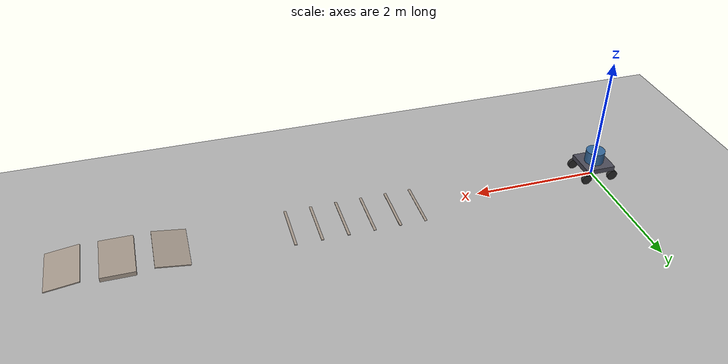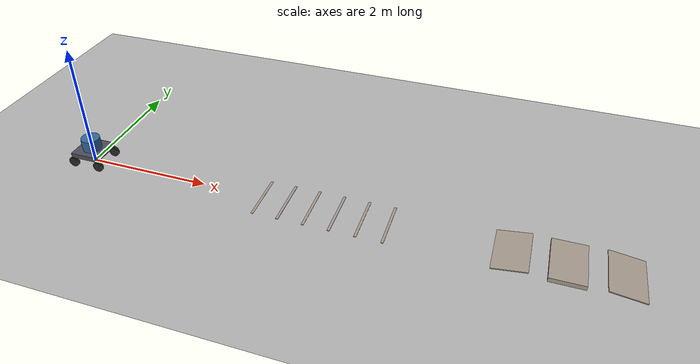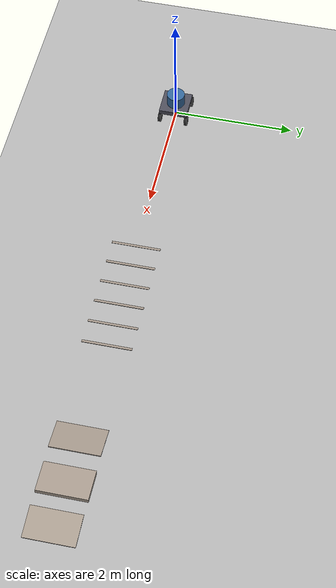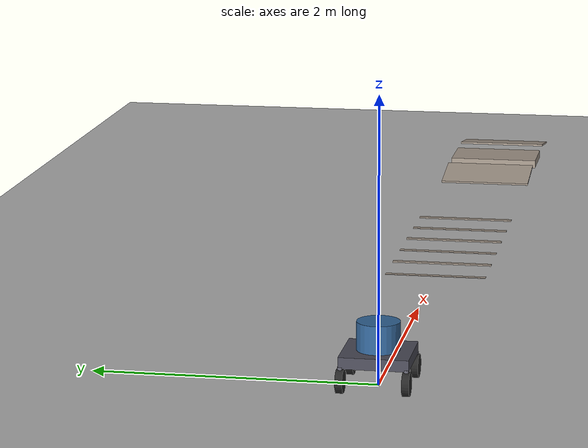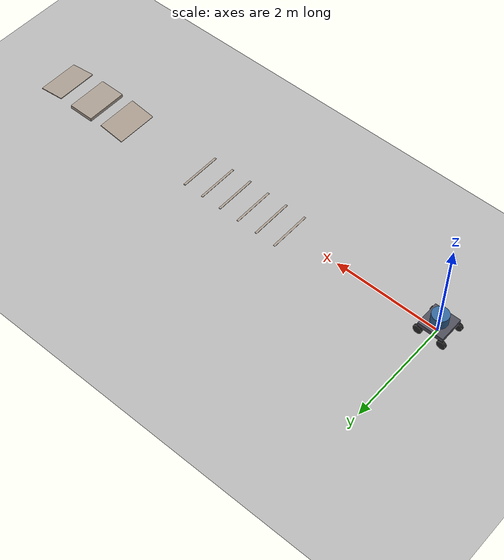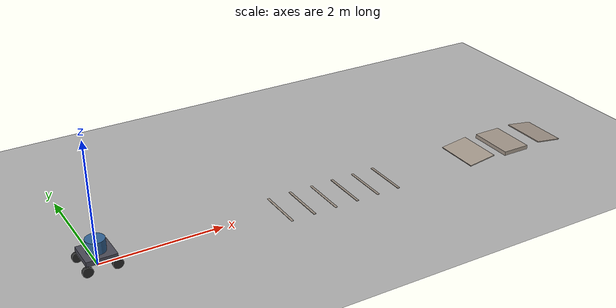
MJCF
<mujoco model="ballbutler_rover">
  <!-- Phase 2: Swerve drive rover with spring-damper suspension -->

  <!-- implicitfast integrator is more stable for spring-damper systems -->
  <option timestep="0.002" gravity="0 0 -9.81" integrator="implicitfast">
    <flag contact="enable" />
  </option>

  <default>
    <geom condim="4" friction="0.9 0.005 0.001" solref="0.02 1" solimp="0.9 0.95 0.001" />
    <joint damping="0.1" />
  </default>

  <visual>
    <headlight ambient="0.3 0.3 0.3" diffuse="0.6 0.6 0.6" />
    <quality shadowsize="4096" />
    <map znear="0.01" zfar="50" />
  </visual>

  <asset>
    <texture name="grid" type="2d" builtin="checker" rgb1="0.8 0.8 0.8" rgb2="0.6 0.6 0.6"
             width="512" height="512" />
    <material name="ground_mat" texture="grid" texrepeat="8 8" reflectance="0.1" />
    <material name="terrain_mat" rgba="0.65 0.6 0.55 1" />
  </asset>

  <!-- Rover: chassis, swerve modules, actuators, sensors, contacts -->
  <include file="rover.xml" />

  <worldbody>
    <!-- Overhead light -->
    <light pos="0 0 6" dir="0 0 -1" diffuse="0.8 0.8 0.8" specular="0.3 0.3 0.3" castshadow="true" />

    <!-- Tracking camera -->
    <camera name="track" pos="0 -4 3" xyaxes="1 0 0 0 0.6 0.8" mode="trackcom" />
    <!-- Fixed overhead camera -->
    <camera name="overhead" pos="0 0 8" zaxis="0 0 1" mode="fixed" />

    <!-- Ground plane: 20x20 m concrete-like surface -->
    <geom name="ground" type="plane" size="10 10 0.1" material="ground_mat"
          friction="0.9 0.005 0.001" condim="4" />

    <!-- TEST TERRAIN (Phase 2 validation)                                -->
    <!-- Bumps: 5-10 mm tall boxes at x=3..5 m along the x-axis          -->
    <!-- Curb-cut ramp: ~70 mm rise at x=7 m                             -->

    <!-- Small bumps — varying height, 40 mm wide along x, 800 mm across y -->
    <geom name="bump1" type="box" pos="3.0 0 0.0025" size="0.02 0.4 0.0025"
          material="terrain_mat" friction="0.9 0.005 0.001" condim="4" />
    <geom name="bump2" type="box" pos="3.4 0 0.005" size="0.02 0.4 0.005"
          material="terrain_mat" friction="0.9 0.005 0.001" condim="4" />
    <geom name="bump3" type="box" pos="3.8 0 0.0035" size="0.02 0.4 0.0035"
          material="terrain_mat" friction="0.9 0.005 0.001" condim="4" />
    <geom name="bump4" type="box" pos="4.2 0 0.005" size="0.02 0.4 0.005"
          material="terrain_mat" friction="0.9 0.005 0.001" condim="4" />
    <geom name="bump5" type="box" pos="4.6 0 0.004" size="0.02 0.4 0.004"
          material="terrain_mat" friction="0.9 0.005 0.001" condim="4" />
    <geom name="bump6" type="box" pos="5.0 0 0.005" size="0.02 0.4 0.005"
          material="terrain_mat" friction="0.9 0.005 0.001" condim="4" />

    <!-- Curb-cut ramp: 70 mm rise over 500 mm run (~8 degrees) -->
    <!-- Ramp up: tilted slab, bottom edge at ground, top edge at z=0.07 -->
    <geom name="ramp_up" type="box" pos="6.75 0 0.035" size="0.253 0.4 0.008"
          euler="0 -8 0" material="terrain_mat" friction="0.9 0.005 0.001" condim="4" />
    <!-- Flat top: solid block 500 mm long at 70 mm height -->
    <geom name="ramp_top" type="box" pos="7.5 0 0.035" size="0.25 0.4 0.035"
          material="terrain_mat" friction="0.9 0.005 0.001" condim="4" />
    <!-- Ramp down: mirror of ramp up -->
    <geom name="ramp_down" type="box" pos="8.25 0 0.035" size="0.253 0.4 0.008"
          euler="0 8 0" material="terrain_mat" friction="0.9 0.005 0.001" condim="4" />
  </worldbody>
</mujoco>

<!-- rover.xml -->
<mujoco>
  <!-- BallButler Rover — shared chassis, swerve modules, actuators,      -->
  <!-- sensors, and contact exclusions.                                   -->
  <!-- Included by scene.xml and scene_terrain.xml.  Any changes here     -->
  <!-- apply to ALL scenes automatically.                                 -->
  <!-- Coordinate frame: x-forward, y-left, z-up                         -->
  <!-- Chassis centre at z=0.21 m (clearance above wheel tops)           -->
  <!-- Chassis box: 480x480x80 mm                                        -->
  <!-- Wheel centres at z=0.0825 m (wheel radius)                       -->
  <!-- Track and wheelbase: 450 mm (+-225 mm from centre)                -->
  <!-- Module kinematic chain (from chassis outward):                     -->
  <!--   yaw hinge (chassis-mounted motor) ->                            -->
  <!--   prismatic slide (spline shaft suspension) ->                    -->
  <!--   fork body ->                                                     -->
  <!--   drive hinge (hub motor) ->                                      -->
  <!--   wheel                                                            -->
  <!-- Suspension parameters:                                             -->
  <!--   Sprung mass per corner: ~4.8 kg                                 -->
  <!--   Stiffness: 3600 N/m  (natural freq ~4.4 Hz)                    -->
  <!--   Damping: 100 N-s/m   (damping ratio ~0.39)                     -->
  <!--   Travel: +-25 mm (50 mm total)                                   -->
  <!--   springref: -0.013 m  (preload for ~zero static sag at q=0)     -->

  <asset>
    <material name="chassis_mat" rgba="0.3 0.3 0.35 1" />
    <material name="payload_mat" rgba="0.2 0.4 0.6 1" />
    <material name="yaw_motor_mat" rgba="0.4 0.4 0.45 1" />
    <material name="fork_mat" rgba="0.5 0.5 0.5 1" />
    <material name="wheel_mat" rgba="0.15 0.15 0.15 1" />
  </asset>

  <!-- CONTACT EXCLUSIONS                                                  -->
  <!-- Parent-child exclusions are automatic in MuJoCo.  We only need     -->
  <!-- explicit exclusions for non-adjacent bodies in the kinematic chain: -->
  <!--   chassis -> yaw_body -> fork -> wheel                              -->
  <!-- Automatic: chassis<->yaw_body, yaw_body<->fork, fork<->wheel       -->
  <!-- Manual:    chassis<->fork, chassis<->wheel, yaw_body<->wheel        -->
  <contact>
    <!-- FL module -->
    <exclude body1="chassis" body2="fl_fork" />
    <exclude body1="chassis" body2="fl_wheel" />
    <exclude body1="fl_yaw_body" body2="fl_wheel" />
    <!-- FR module -->
    <exclude body1="chassis" body2="fr_fork" />
    <exclude body1="chassis" body2="fr_wheel" />
    <exclude body1="fr_yaw_body" body2="fr_wheel" />
    <!-- RL module -->
    <exclude body1="chassis" body2="rl_fork" />
    <exclude body1="chassis" body2="rl_wheel" />
    <exclude body1="rl_yaw_body" body2="rl_wheel" />
    <!-- RR module -->
    <exclude body1="chassis" body2="rr_fork" />
    <exclude body1="chassis" body2="rr_wheel" />
    <exclude body1="rr_yaw_body" body2="rr_wheel" />
  </contact>

  <worldbody>
    <!-- ROVER CHASSIS                                                     -->
    <body name="chassis" pos="0 0 0.21">
      <freejoint name="chassis_free" />

      <!-- Chassis box: 480x480x80 mm, 10 kg -->
      <geom name="chassis_geom" type="box" size="0.24 0.24 0.04" mass="10"
            material="chassis_mat" />

      <!-- Lumped payload (Ball Butler + hopper + sensors + battery + compute) -->
      <!-- Cylinder: 300 mm diameter, 200 mm tall, centred 140 mm above chassis centre -->
      <geom name="payload" type="cylinder" pos="0 0 0.14" size="0.15 0.10" mass="8"
            material="payload_mat" contype="0" conaffinity="0" />

      <!-- IMU sensor site at chassis centre -->
      <site name="imu_site" pos="0 0 0" size="0.01" />

      <!-- ── FRONT-LEFT MODULE  (x=+0.225, y=+0.225) ─────────────── -->
      <body name="fl_yaw_body" pos="0.225 0.225 -0.04">
        <joint name="fl_yaw" type="hinge" axis="0 0 1" damping="2.0" />
        <geom name="fl_yaw_geom" type="cylinder" size="0.02 0.012"
              mass="0.3" material="yaw_motor_mat" contype="0" conaffinity="0" />
        <body name="fl_fork" pos="0 0 0">
          <joint name="fl_susp" type="slide" axis="0 0 1" limited="true"
                 range="-0.025 0.025" stiffness="3600" damping="100"
                 springref="-0.013" />
          <geom name="fl_fork_geom" type="box" size="0.015 0.015 0.044"
                pos="0 0 -0.044" mass="0.2" material="fork_mat" />
          <body name="fl_wheel" pos="0 0 -0.0875">
            <joint name="fl_drive" type="hinge" axis="0 1 0" damping="0.05" />
            <geom name="fl_wheel_geom" type="cylinder" size="0.0825 0.025"
                  euler="90 0 0" mass="2.5" material="wheel_mat"
                  friction="1.0 0.005 0.001" condim="4" />
          </body>
        </body>
      </body>

      <!-- ── FRONT-RIGHT MODULE (x=+0.225, y=-0.225) ─────────────── -->
      <body name="fr_yaw_body" pos="0.225 -0.225 -0.04">
        <joint name="fr_yaw" type="hinge" axis="0 0 1" damping="2.0" />
        <geom name="fr_yaw_geom" type="cylinder" size="0.02 0.012"
              mass="0.3" material="yaw_motor_mat" contype="0" conaffinity="0" />
        <body name="fr_fork" pos="0 0 0">
          <joint name="fr_susp" type="slide" axis="0 0 1" limited="true"
                 range="-0.025 0.025" stiffness="3600" damping="100"
                 springref="-0.013" />
          <geom name="fr_fork_geom" type="box" size="0.015 0.015 0.044"
                pos="0 0 -0.044" mass="0.2" material="fork_mat" />
          <body name="fr_wheel" pos="0 0 -0.0875">
            <joint name="fr_drive" type="hinge" axis="0 1 0" damping="0.05" />
            <geom name="fr_wheel_geom" type="cylinder" size="0.0825 0.025"
                  euler="90 0 0" mass="2.5" material="wheel_mat"
                  friction="1.0 0.005 0.001" condim="4" />
          </body>
        </body>
      </body>

      <!-- ── REAR-LEFT MODULE   (x=-0.225, y=+0.225) ─────────────── -->
      <body name="rl_yaw_body" pos="-0.225 0.225 -0.04">
        <joint name="rl_yaw" type="hinge" axis="0 0 1" damping="2.0" />
        <geom name="rl_yaw_geom" type="cylinder" size="0.02 0.012"
              mass="0.3" material="yaw_motor_mat" contype="0" conaffinity="0" />
        <body name="rl_fork" pos="0 0 0">
          <joint name="rl_susp" type="slide" axis="0 0 1" limited="true"
                 range="-0.025 0.025" stiffness="3600" damping="100"
                 springref="-0.013" />
          <geom name="rl_fork_geom" type="box" size="0.015 0.015 0.044"
                pos="0 0 -0.044" mass="0.2" material="fork_mat" />
          <body name="rl_wheel" pos="0 0 -0.0875">
            <joint name="rl_drive" type="hinge" axis="0 1 0" damping="0.05" />
            <geom name="rl_wheel_geom" type="cylinder" size="0.0825 0.025"
                  euler="90 0 0" mass="2.5" material="wheel_mat"
                  friction="1.0 0.005 0.001" condim="4" />
          </body>
        </body>
      </body>

      <!-- ── REAR-RIGHT MODULE  (x=-0.225, y=-0.225) ─────────────── -->
      <body name="rr_yaw_body" pos="-0.225 -0.225 -0.04">
        <joint name="rr_yaw" type="hinge" axis="0 0 1" damping="2.0" />
        <geom name="rr_yaw_geom" type="cylinder" size="0.02 0.012"
              mass="0.3" material="yaw_motor_mat" contype="0" conaffinity="0" />
        <body name="rr_fork" pos="0 0 0">
          <joint name="rr_susp" type="slide" axis="0 0 1" limited="true"
                 range="-0.025 0.025" stiffness="3600" damping="100"
                 springref="-0.013" />
          <geom name="rr_fork_geom" type="box" size="0.015 0.015 0.044"
                pos="0 0 -0.044" mass="0.2" material="fork_mat" />
          <body name="rr_wheel" pos="0 0 -0.0875">
            <joint name="rr_drive" type="hinge" axis="0 1 0" damping="0.05" />
            <geom name="rr_wheel_geom" type="cylinder" size="0.0825 0.025"
                  euler="90 0 0" mass="2.5" material="wheel_mat"
                  friction="1.0 0.005 0.001" condim="4" />
          </body>
        </body>
      </body>

    </body><!-- end chassis -->
  </worldbody>

  <!-- ACTUATORS                                                          -->
  <!-- Yaw: position-controlled (kp=50 N-m/rad, torque limit +-10 N-m)   -->
  <!-- Drive: velocity-controlled (kv=10 N-m-s/rad, torque limit +-30 N-m)-->
  <!-- Suspension is passive (spring-damper on the prismatic joint).      -->
  <actuator>
    <!-- Yaw actuators (position control) -->
    <position name="fl_yaw_act" joint="fl_yaw" kp="50" ctrlrange="-3.14159 3.14159"
              forcerange="-10 10" />
    <position name="fr_yaw_act" joint="fr_yaw" kp="50" ctrlrange="-3.14159 3.14159"
              forcerange="-10 10" />
    <position name="rl_yaw_act" joint="rl_yaw" kp="50" ctrlrange="-3.14159 3.14159"
              forcerange="-10 10" />
    <position name="rr_yaw_act" joint="rr_yaw" kp="50" ctrlrange="-3.14159 3.14159"
              forcerange="-10 10" />

    <!-- Drive actuators (velocity control) -->
    <velocity name="fl_drive_act" joint="fl_drive" kv="10" ctrlrange="-30 30"
              forcerange="-30 30" />
    <velocity name="fr_drive_act" joint="fr_drive" kv="10" ctrlrange="-30 30"
              forcerange="-30 30" />
    <velocity name="rl_drive_act" joint="rl_drive" kv="10" ctrlrange="-30 30"
              forcerange="-30 30" />
    <velocity name="rr_drive_act" joint="rr_drive" kv="10" ctrlrange="-30 30"
              forcerange="-30 30" />
  </actuator>

  <!-- SENSORS                                                            -->
  <sensor>
    <!-- Chassis IMU -->
    <accelerometer name="imu_accel" site="imu_site" />
    <gyro name="imu_gyro" site="imu_site" />

    <!-- Yaw joint positions -->
    <jointpos name="fl_yaw_pos" joint="fl_yaw" />
    <jointpos name="fr_yaw_pos" joint="fr_yaw" />
    <jointpos name="rl_yaw_pos" joint="rl_yaw" />
    <jointpos name="rr_yaw_pos" joint="rr_yaw" />

    <!-- Drive joint velocities -->
    <jointvel name="fl_drive_vel" joint="fl_drive" />
    <jointvel name="fr_drive_vel" joint="fr_drive" />
    <jointvel name="rl_drive_vel" joint="rl_drive" />
    <jointvel name="rr_drive_vel" joint="rr_drive" />

    <!-- Suspension joint positions -->
    <jointpos name="fl_susp_pos" joint="fl_susp" />
    <jointpos name="fr_susp_pos" joint="fr_susp" />
    <jointpos name="rl_susp_pos" joint="rl_susp" />
    <jointpos name="rr_susp_pos" joint="rr_susp" />
  </sensor>
</mujoco>
